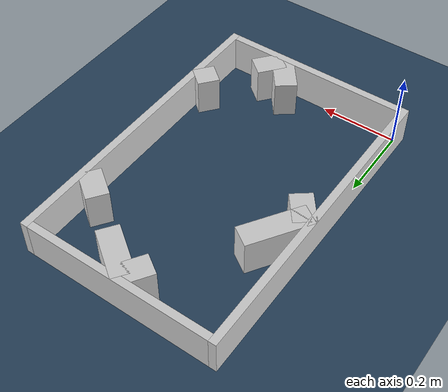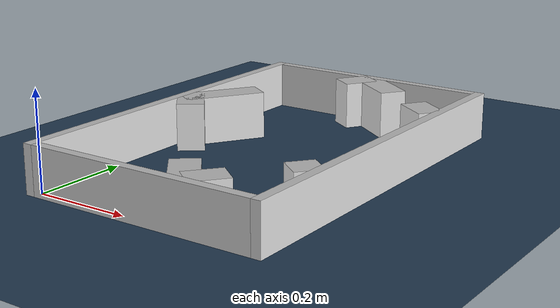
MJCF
<?xml version="1.0" ?>
<mujoco model="generated_real_template">
  <compiler angle="degree"/>
  <option timestep="0.002" integrator="implicitfast" iterations="100" cone="elliptic"/>
  <default>
    <geom density="1"/>
  </default>
  <asset>
    <texture builtin="gradient" height="3072" rgb1="0.3 0.5 0.7" rgb2="0 0 0" type="skybox" width="512"/>
    <texture builtin="checker" height="300" mark="edge" markrgb="0.8 0.8 0.8" name="groundplane" rgb1="0.2 0.3 0.4" rgb2="0.1 0.2 0.3" type="2d" width="300"/>
    <material name="groundplane" reflectance="0.2" texrepeat="5 5" texture="groundplane" texuniform="true"/>
  </asset>
  <worldbody>
    <light dir="0 0 -1" directional="true" pos="0 0 1.5"/>
    <geom name="floor" type="plane" condim="4" friction="0.5 0.005 0.001" material="groundplane" size="0 0 0.05"/>
    <body name="walls">
      <geom name="wall_boundary_left" type="box" condim="4" friction="1.0 0.005 0.0001" rgba="0.8 0.8 0.8 1" pos="-0.010000 0.387500 0.050000" euler="0 0 0.000000" size="0.010000 0.407500 0.050000"/>
      <geom name="wall_boundary_right" type="box" condim="4" friction="1.0 0.005 0.0001" rgba="0.8 0.8 0.8 1" pos="0.500000 0.387500 0.050000" euler="0 0 0.000000" size="0.010000 0.407500 0.050000"/>
      <geom name="wall_boundary_bottom" type="box" condim="4" friction="1.0 0.005 0.0001" rgba="0.8 0.8 0.8 1" pos="0.245000 -0.010000 0.050000" euler="0 0 0.000000" size="0.245000 0.010000 0.050000"/>
      <geom name="wall_boundary_top" type="box" condim="4" friction="1.0 0.005 0.0001" rgba="0.8 0.8 0.8 1" pos="0.245000 0.785000 0.050000" euler="0 0 0.000000" size="0.245000 0.010000 0.050000"/>
      <geom name="wall_inner_1_1" type="box" condim="4" friction="1.0 0.005 0.0001" rgba="0.8 0.8 0.8 1" pos="0.362390 0.030396 0.050000" euler="0 0 51.109765" size="0.039051 0.028500 0.050000"/>
      <geom name="wall_inner_1_2" type="box" condim="4" friction="1.0 0.005 0.0001" rgba="0.8 0.8 0.8 1" pos="0.469773 0.163523 0.050000" euler="0 0 51.109765" size="0.028738 0.028500 0.050000"/>
      <geom name="wall_inner_2_1" type="box" condim="4" friction="1.0 0.005 0.0001" rgba="0.8 0.8 0.8 1" pos="0.456580 0.614830 0.050000" euler="0 0 144.544122" size="0.041028 0.028500 0.050000"/>
      <geom name="wall_inner_2_2" type="box" condim="4" friction="1.0 0.005 0.0001" rgba="0.8 0.8 0.8 1" pos="0.291362 0.732487 0.050000" euler="0 0 144.544122" size="0.067745 0.028500 0.050000"/>
      <geom name="wall_inner_3_1" type="box" condim="4" friction="1.0 0.005 0.0001" rgba="0.8 0.8 0.8 1" pos="0.308941 0.039231 0.050000" euler="0 0 128.013009" size="0.049794 0.028500 0.050000"/>
      <geom name="wall_inner_3_2" type="box" condim="4" friction="1.0 0.005 0.0001" rgba="0.8 0.8 0.8 1" pos="0.028503 0.398007 0.050000" euler="0 0 128.013009" size="0.042297 0.028500 0.050000"/>
      <geom name="wall_inner_4_1" type="box" condim="4" friction="1.0 0.005 0.0001" rgba="0.8 0.8 0.8 1" pos="0.225260 0.743523 0.050000" euler="0 0 -123.070910" size="0.037562 0.028500 0.050000"/>
      <geom name="wall_inner_4_2" type="box" condim="4" friction="1.0 0.005 0.0001" rgba="0.8 0.8 0.8 1" pos="0.050561 0.475239 0.050000" euler="0 0 -123.070910" size="0.085540 0.028500 0.050000"/>
    </body>
  </worldbody>
</mujoco>
